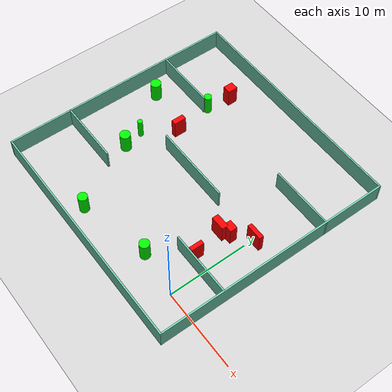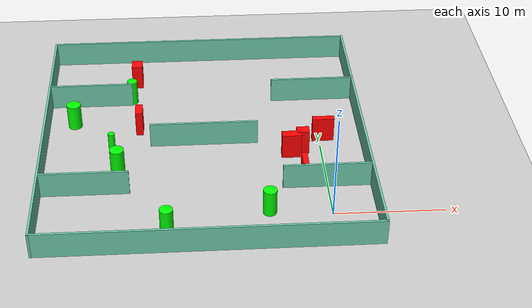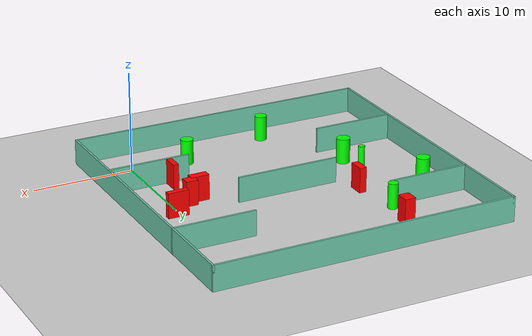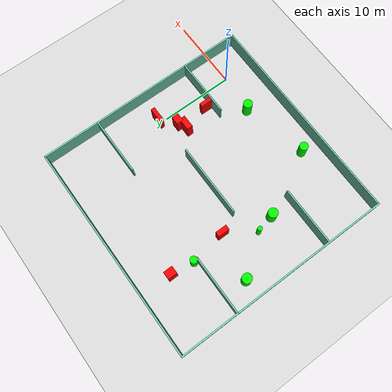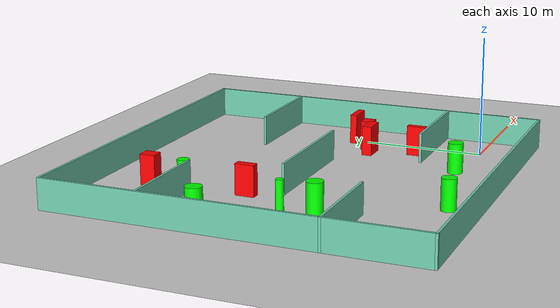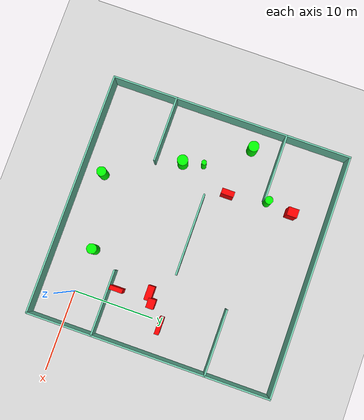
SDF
<sdf version="1.7">
 <world name="default">
  <light name="sun" type="directional">
   <pose>0 0 10 0 -0 0</pose>
   <diffuse>0.8 0.8 0.8 1</diffuse>
   <specular>0.2 0.2 0.2 1</specular>
   <attenuation>
    <range>1000</range>
    <constant>0.9</constant>
    <linear>0.01</linear>
    <quadratic>0.001</quadratic>
   </attenuation>
   <direction>-0.5 0.1 -0.9</direction>
   <spot><inner_angle>0</inner_angle><outer_angle>0</outer_angle><falloff>0</falloff></spot>
  </light>
  <model name="ground_plane">
   <static>1</static>
   <link name="link">
    <collision name="collision">
     <geometry><plane><normal>0 0 1</normal><size>100 100</size></plane></geometry>
     <surface>
      <contact><collide_bitmask>65535</collide_bitmask></contact>
      <friction><ode><mu>100</mu><mu2>50</mu2></ode></friction>
     </surface>
    </collision>
    <visual name="visual">
     <cast_shadows>0</cast_shadows>
     <geometry><plane><normal>0 0 1</normal><size>100 100</size></plane></geometry>
     <material>
      <script><uri>file://media/materials/scripts/gazebo.material</uri><name>Gazebo/Grey</name></script>
     </material>
    </visual>
   </link>
  </model>
  <gravity>0 0 -9.8</gravity>
  <magnetic_field>6e-06 2.3e-05 -4.2e-05</magnetic_field>
  <atmosphere type="adiabatic"/>
  <physics type="ode">
   <max_step_size>0.001</max_step_size>
   <real_time_factor>1</real_time_factor>
   <real_time_update_rate>1000</real_time_update_rate>
  </physics>
  <scene><ambient>0.4 0.4 0.4 1</ambient><background>0.7 0.7 0.7 1</background><shadows>1</shadows></scene>
  <spherical_coordinates>
   <surface_model>EARTH_WGS84</surface_model>
   <latitude_deg>0</latitude_deg>
   <longitude_deg>0</longitude_deg>
   <elevation>0</elevation>
   <heading_deg>0</heading_deg>
  </spherical_coordinates>
  <model name="my_base_walls">
   <link name="Wall_10">
    <collision name="Wall_10_Collision">
     <geometry><box><size>8.2 0.2 2.5</size></box></geometry>
     <pose>0 0 1.25 0 -0 0</pose>
    </collision>
    <visual name="Wall_10_Visual">
     <pose>0 0 1.25 0 -0 0</pose>
     <geometry><box><size>8.2 0.2 2.5</size></box></geometry>
     <material>
      <script><uri>file://media/materials/scripts/gazebo.material</uri><name>Gazebo/Grey</name></script>
      <ambient>0.435294 0.796078 0.67451 1</ambient>
     </material>
     <meta><layer>0</layer></meta>
    </visual>
    <pose>-11 -7 0 0 -0 0</pose>
   </link>
   <link name="Wall_12">
    <collision name="Wall_12_Collision">
     <geometry><box><size>8.2 0.2 2.5</size></box></geometry>
     <pose>0 0 1.25 0 -0 0</pose>
    </collision>
    <visual name="Wall_12_Visual">
     <pose>0 0 1.25 0 -0 0</pose>
     <geometry><box><size>8.2 0.2 2.5</size></box></geometry>
     <material>
      <script><uri>file://media/materials/scripts/gazebo.material</uri><name>Gazebo/Grey</name></script>
      <ambient>0.435294 0.796078 0.67451 1</ambient>
     </material>
     <meta><layer>0</layer></meta>
    </visual>
    <pose>-11 7 0 0 -0 0</pose>
   </link>
   <link name="Wall_14">
    <collision name="Wall_14_Collision">
     <geometry><box><size>8.2 0.2 2.5</size></box></geometry>
     <pose>0 0 1.25 0 -0 0</pose>
    </collision>
    <visual name="Wall_14_Visual">
     <pose>0 0 1.25 0 -0 0</pose>
     <geometry><box><size>8.2 0.2 2.5</size></box></geometry>
     <material>
      <script><uri>file://media/materials/scripts/gazebo.material</uri><name>Gazebo/Grey</name></script>
      <ambient>0.435294 0.796078 0.67451 1</ambient>
     </material>
     <meta><layer>0</layer></meta>
    </visual>
    <pose>11 7 0 0 -0 3.14159</pose>
   </link>
   <link name="Wall_16">
    <collision name="Wall_16_Collision">
     <geometry><box><size>10.2 0.2 2.5</size></box></geometry>
     <pose>0 0 1.25 0 -0 0</pose>
    </collision>
    <visual name="Wall_16_Visual">
     <pose>0 0 1.25 0 -0 0</pose>
     <geometry><box><size>10.2 0.2 2.5</size></box></geometry>
     <material>
      <script><uri>file://media/materials/scripts/gazebo.material</uri><name>Gazebo/Grey</name></script>
      <ambient>0.435294 0.796078 0.67451 1</ambient>
     </material>
     <meta><layer>0</layer></meta>
    </visual>
    <pose>0 0 0 0 -0 3.14159</pose>
   </link>
   <link name="Wall_2">
    <collision name="Wall_2_Collision">
     <geometry><box><size>30.2 0.2 2.5</size></box></geometry>
     <pose>0 0 1.25 0 -0 0</pose>
    </collision>
    <visual name="Wall_2_Visual">
     <pose>0 0 1.25 0 -0 0</pose>
     <geometry><box><size>30.2 0.2 2.5</size></box></geometry>
     <material>
      <script><uri>file://media/materials/scripts/gazebo.material</uri><name>Gazebo/Grey</name></script>
      <ambient>0.435294 0.796078 0.67451 1</ambient>
     </material>
     <meta><layer>0</layer></meta>
    </visual>
    <pose>0 -15 0 0 -0 3.14159</pose>
   </link>
   <link name="Wall_3">
    <collision name="Wall_3_Collision">
     <geometry><box><size>30.2 0.2 2.5</size></box></geometry>
     <pose>0 0 1.25 0 -0 0</pose>
    </collision>
    <visual name="Wall_3_Visual">
     <pose>0 0 1.25 0 -0 0</pose>
     <geometry><box><size>30.2 0.2 2.5</size></box></geometry>
     <material>
      <script><uri>file://media/materials/scripts/gazebo.material</uri><name>Gazebo/Grey</name></script>
      <ambient>0.435294 0.796078 0.67451 1</ambient>
     </material>
     <meta><layer>0</layer></meta>
    </visual>
    <pose>-15 0 0 0 -0 1.5708</pose>
   </link>
   <link name="Wall_4">
    <collision name="Wall_4_Collision">
     <geometry><box><size>30.2 0.2 2.5</size></box></geometry>
     <pose>0 0 1.25 0 -0 0</pose>
    </collision>
    <visual name="Wall_4_Visual">
     <pose>0 0 1.25 0 -0 0</pose>
     <geometry><box><size>30.2 0.2 2.5</size></box></geometry>
     <material>
      <script><uri>file://media/materials/scripts/gazebo.material</uri><name>Gazebo/Grey</name></script>
      <ambient>0.435294 0.796078 0.67451 1</ambient>
     </material>
     <meta><layer>0</layer></meta>
    </visual>
    <pose>0 15 0 0 -0 0</pose>
   </link>
   <link name="Wall_6">
    <collision name="Wall_6_Collision">
     <geometry><box><size>30.2 0.2 2.5</size></box></geometry>
     <pose>0 0 1.25 0 -0 0</pose>
    </collision>
    <visual name="Wall_6_Visual">
     <pose>0 0 1.25 0 -0 0</pose>
     <geometry><box><size>30.2 0.2 2.5</size></box></geometry>
     <material>
      <script><uri>file://media/materials/scripts/gazebo.material</uri><name>Gazebo/Grey</name></script>
      <ambient>0.435294 0.796078 0.67451 1</ambient>
     </material>
     <meta><layer>0</layer></meta>
    </visual>
    <pose>15 0 0 0 -0 1.5708</pose>
   </link>
   <link name="Wall_8">
    <collision name="Wall_8_Collision">
     <geometry><box><size>8.2 0.2 2.5</size></box></geometry>
     <pose>0 0 1.25 0 -0 0</pose>
    </collision>
    <visual name="Wall_8_Visual">
     <pose>0 0 1.25 0 -0 0</pose>
     <geometry><box><size>8.2 0.2 2.5</size></box></geometry>
     <material>
      <script><uri>file://media/materials/scripts/gazebo.material</uri><name>Gazebo/Grey</name></script>
      <ambient>0.435294 0.796078 0.67451 1</ambient>
     </material>
     <meta><layer>0</layer></meta>
    </visual>
    <pose>11 -7 0 0 -0 3.14159</pose>
   </link>
   <static>1</static>
   <pose>-11 11 0 0 -0 0</pose>
  </model>
  <model name="cylinder1">
   <static>1</static>
   <link name="link">
    <inertial>
     <mass>1</mass>
     <inertia><ixx>0.5</ixx><ixy>0</ixy><ixz>0</ixz><iyy>0.5</iyy><iyz>0</iyz><izz>1</izz></inertia>
    </inertial>
    <collision name="collision">
     <geometry><cylinder><radius>0.6608175776827309</radius><length>2.5</length></cylinder></geometry>
    </collision>
    <visual name="visual">
     <geometry><cylinder><radius>0.6608175776827309</radius><length>2.5</length></cylinder></geometry>
     <material>
      <ambient>0 1 0 1</ambient>
      <diffuse>0 1 0 1</diffuse>
      <specular>0.1 0.1 0.1 1</specular>
      <emissive>0 0 0 0</emissive>
     </material>
    </visual>
   </link>
   <pose>-19.068272587144936 7.200398674229987 1.25 0 0 0</pose>
  </model>
  <model name="cylinder2">
   <static>1</static>
   <link name="link">
    <inertial>
     <mass>1</mass>
     <inertia><ixx>0.5</ixx><ixy>0</ixy><ixz>0</ixz><iyy>0.5</iyy><iyz>0</iyz><izz>1</izz></inertia>
    </inertial>
    <collision name="collision">
     <geometry><cylinder><radius>0.31518473423417087</radius><length>2.5</length></cylinder></geometry>
    </collision>
    <visual name="visual">
     <geometry><cylinder><radius>0.31518473423417087</radius><length>2.5</length></cylinder></geometry>
     <material>
      <ambient>0 1 0 1</ambient>
      <diffuse>0 1 0 1</diffuse>
      <specular>0.1 0.1 0.1 1</specular>
      <emissive>0 0 0 0</emissive>
     </material>
    </visual>
   </link>
   <pose>-19.650247049403923 9.716953022100267 1.25 0 0 0</pose>
  </model>
  <model name="cylinder3">
   <static>1</static>
   <link name="link">
    <inertial>
     <mass>1</mass>
     <inertia><ixx>0.5</ixx><ixy>0</ixy><ixz>0</ixz><iyy>0.5</iyy><iyz>0</iyz><izz>1</izz></inertia>
    </inertial>
    <collision name="collision">
     <geometry><cylinder><radius>0.6176162806535244</radius><length>2.5</length></cylinder></geometry>
    </collision>
    <visual name="visual">
     <geometry><cylinder><radius>0.6176162806535244</radius><length>2.5</length></cylinder></geometry>
     <material>
      <ambient>0 1 0 1</ambient>
      <diffuse>0 1 0 1</diffuse>
      <specular>0.1 0.1 0.1 1</specular>
      <emissive>0 0 0 0</emissive>
     </material>
    </visual>
   </link>
   <pose>-5.536419875876536 0.6087388346489901 1.25 0 0 0</pose>
  </model>
  <model name="cylinder4">
   <static>1</static>
   <link name="link">
    <inertial>
     <mass>1</mass>
     <inertia><ixx>0.5</ixx><ixy>0</ixy><ixz>0</ixz><iyy>0.5</iyy><iyz>0</iyz><izz>1</izz></inertia>
    </inertial>
    <collision name="collision">
     <geometry><cylinder><radius>0.6621109706524505</radius><length>2.5</length></cylinder></geometry>
    </collision>
    <visual name="visual">
     <geometry><cylinder><radius>0.6621109706524505</radius><length>2.5</length></cylinder></geometry>
     <material>
      <ambient>0 1 0 1</ambient>
      <diffuse>0 1 0 1</diffuse>
      <specular>0.1 0.1 0.1 1</specular>
      <emissive>0 0 0 0</emissive>
     </material>
    </visual>
   </link>
   <pose>-23.461879832026007 14.676334184289985 1.25 0 0 0</pose>
  </model>
  <model name="cylinder5">
   <static>1</static>
   <link name="link">
    <inertial>
     <mass>1</mass>
     <inertia><ixx>0.5</ixx><ixy>0</ixy><ixz>0</ixz><iyy>0.5</iyy><iyz>0</iyz><izz>1</izz></inertia>
    </inertial>
    <collision name="collision">
     <geometry><cylinder><radius>0.4875718855607928</radius><length>2.5</length></cylinder></geometry>
    </collision>
    <visual name="visual">
     <geometry><cylinder><radius>0.4875718855607928</radius><length>2.5</length></cylinder></geometry>
     <material>
      <ambient>0 1 0 1</ambient>
      <diffuse>0 1 0 1</diffuse>
      <specular>0.1 0.1 0.1 1</specular>
      <emissive>0 0 0 0</emissive>
     </material>
    </visual>
   </link>
   <pose>-17.914711299213625 18.48881017339285 1.25 0 0 0</pose>
  </model>
  <model name="cylinder6">
   <static>1</static>
   <link name="link">
    <inertial>
     <mass>1</mass>
     <inertia><ixx>0.5</ixx><ixy>0</ixy><ixz>0</ixz><iyy>0.5</iyy><iyz>0</iyz><izz>1</izz></inertia>
    </inertial>
    <collision name="collision">
     <geometry><cylinder><radius>0.5919483520124458</radius><length>2.5</length></cylinder></geometry>
    </collision>
    <visual name="visual">
     <geometry><cylinder><radius>0.5919483520124458</radius><length>2.5</length></cylinder></geometry>
     <material>
      <ambient>0 1 0 1</ambient>
      <diffuse>0 1 0 1</diffuse>
      <specular>0.1 0.1 0.1 1</specular>
      <emissive>0 0 0 0</emissive>
     </material>
    </visual>
   </link>
   <pose>-14.57757053866877 -1.473781079573791 1.25 0 0 0</pose>
  </model>
  <model name="box1">
   <static>1</static>
   <link name="link">
    <inertial>
     <mass>1</mass>
     <inertia><ixx>0.083</ixx><ixy>0</ixy><ixz>0</ixz><iyy>0.083</iyy><iyz>0</iyz><izz>0.083</izz></inertia>
    </inertial>
    <collision name="collision">
     <geometry><box><size>2.0566440357633553 0.5517976423856448 2.5</size></box></geometry>
    </collision>
    <visual name="visual">
     <geometry><box><size>2.0566440357633553 0.5517976423856448 2.5</size></box></geometry>
     <material>
      <ambient>1 0 0 1</ambient>
      <diffuse>1 0 0 1</diffuse>
      <specular>0.1 0.1 0.1 1</specular>
      <emissive>0 0 0 0</emissive>
     </material>
    </visual>
    <sensor name="my_contact" type="contact">
     <contact><collision>box_collision</collision><topic>__default_topic__</topic></contact>
    </sensor>
   </link>
   <pose>0.33600057881491097 11.129611540609462 1.25 0 0 0</pose>
  </model>
  <model name="box2">
   <static>1</static>
   <link name="link">
    <inertial>
     <mass>1</mass>
     <inertia><ixx>0.083</ixx><ixy>0</ixy><ixz>0</ixz><iyy>0.083</iyy><iyz>0</iyz><izz>0.083</izz></inertia>
    </inertial>
    <collision name="collision">
     <geometry><box><size>1.1831243107815306 0.9304922066885696 2.5</size></box></geometry>
    </collision>
    <visual name="visual">
     <geometry><box><size>1.1831243107815306 0.9304922066885696 2.5</size></box></geometry>
     <material>
      <ambient>1 0 0 1</ambient>
      <diffuse>1 0 0 1</diffuse>
      <specular>0.1 0.1 0.1 1</specular>
      <emissive>0 0 0 0</emissive>
     </material>
    </visual>
    <sensor name="my_contact" type="contact">
     <contact><collision>box_collision</collision><topic>__default_topic__</topic></contact>
    </sensor>
   </link>
   <pose>-1.7856184386081715 9.356044513430842 1.25 0 0 0</pose>
  </model>
  <model name="box3">
   <static>1</static>
   <link name="link">
    <inertial>
     <mass>1</mass>
     <inertia><ixx>0.083</ixx><ixy>0</ixy><ixz>0</ixz><iyy>0.083</iyy><iyz>0</iyz><izz>0.083</izz></inertia>
    </inertial>
    <collision name="collision">
     <geometry><box><size>0.5381261760192327 1.6028576353509343 2.5</size></box></geometry>
    </collision>
    <visual name="visual">
     <geometry><box><size>0.5381261760192327 1.6028576353509343 2.5</size></box></geometry>
     <material>
      <ambient>1 0 0 1</ambient>
      <diffuse>1 0 0 1</diffuse>
      <specular>0.1 0.1 0.1 1</specular>
      <emissive>0 0 0 0</emissive>
     </material>
    </visual>
    <sensor name="my_contact" type="contact">
     <contact><collision>box_collision</collision><topic>__default_topic__</topic></contact>
    </sensor>
   </link>
   <pose>-2.022839065649059 4.9452979625494 1.25 0 0 0</pose>
  </model>
  <model name="box4">
   <static>1</static>
   <link name="link">
    <inertial>
     <mass>1</mass>
     <inertia><ixx>0.083</ixx><ixy>0</ixy><ixz>0</ixz><iyy>0.083</iyy><iyz>0</iyz><izz>0.083</izz></inertia>
    </inertial>
    <collision name="collision">
     <geometry><box><size>1.0594962819421652 1.2639272669382304 2.5</size></box></geometry>
    </collision>
    <visual name="visual">
     <geometry><box><size>1.0594962819421652 1.2639272669382304 2.5</size></box></geometry>
     <material>
      <ambient>1 0 0 1</ambient>
      <diffuse>1 0 0 1</diffuse>
      <specular>0.1 0.1 0.1 1</specular>
      <emissive>0 0 0 0</emissive>
     </material>
    </visual>
    <sensor name="my_contact" type="contact">
     <contact><collision>box_collision</collision><topic>__default_topic__</topic></contact>
    </sensor>
   </link>
   <pose>-17.484736368652495 21.617525873593912 1.25 0 0 0</pose>
  </model>
  <model name="box5">
   <static>1</static>
   <link name="link">
    <inertial>
     <mass>1</mass>
     <inertia><ixx>0.083</ixx><ixy>0</ixy><ixz>0</ixz><iyy>0.083</iyy><iyz>0</iyz><izz>0.083</izz></inertia>
    </inertial>
    <collision name="collision">
     <geometry><box><size>0.6892738327775325 1.5746189797170884 2.5</size></box></geometry>
    </collision>
    <visual name="visual">
     <geometry><box><size>0.6892738327775325 1.5746189797170884 2.5</size></box></geometry>
     <material>
      <ambient>1 0 0 1</ambient>
      <diffuse>1 0 0 1</diffuse>
      <specular>0.1 0.1 0.1 1</specular>
      <emissive>0 0 0 0</emissive>
     </material>
    </visual>
    <sensor name="my_contact" type="contact">
     <contact><collision>box_collision</collision><topic>__default_topic__</topic></contact>
    </sensor>
   </link>
   <pose>-17.15404941120824 13.585334216768668 1.25 0 0 0</pose>
  </model>
  <model name="box6">
   <static>1</static>
   <link name="link">
    <inertial>
     <mass>1</mass>
     <inertia><ixx>0.083</ixx><ixy>0</ixy><ixz>0</ixz><iyy>0.083</iyy><iyz>0</iyz><izz>0.083</izz></inertia>
    </inertial>
    <collision name="collision">
     <geometry><box><size>1.8034782712948032 0.822031440762997 2.5</size></box></geometry>
    </collision>
    <visual name="visual">
     <geometry><box><size>1.8034782712948032 0.822031440762997 2.5</size></box></geometry>
     <material>
      <ambient>1 0 0 1</ambient>
      <diffuse>1 0 0 1</diffuse>
      <specular>0.1 0.1 0.1 1</specular>
      <emissive>0 0 0 0</emissive>
     </material>
    </visual>
    <sensor name="my_contact" type="contact">
     <contact><collision>box_collision</collision><topic>__default_topic__</topic></contact>
    </sensor>
   </link>
   <pose>-2.8855151258326543 8.78732048303351 1.25 0 0 0</pose>
  </model>
 </world>
</sdf>
